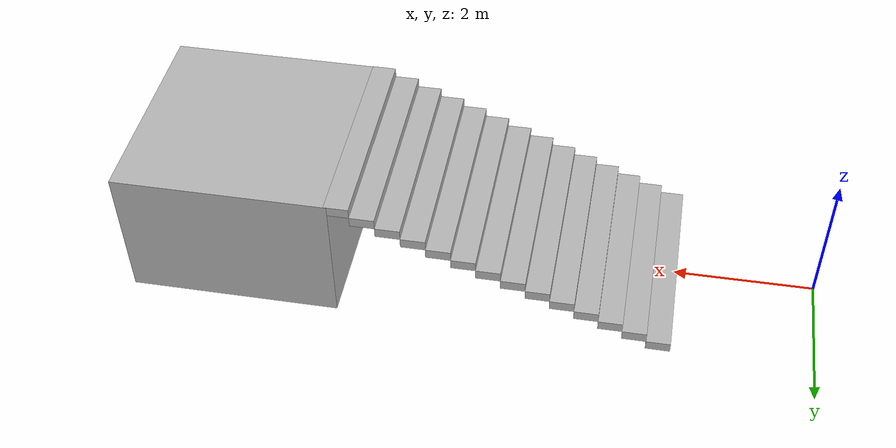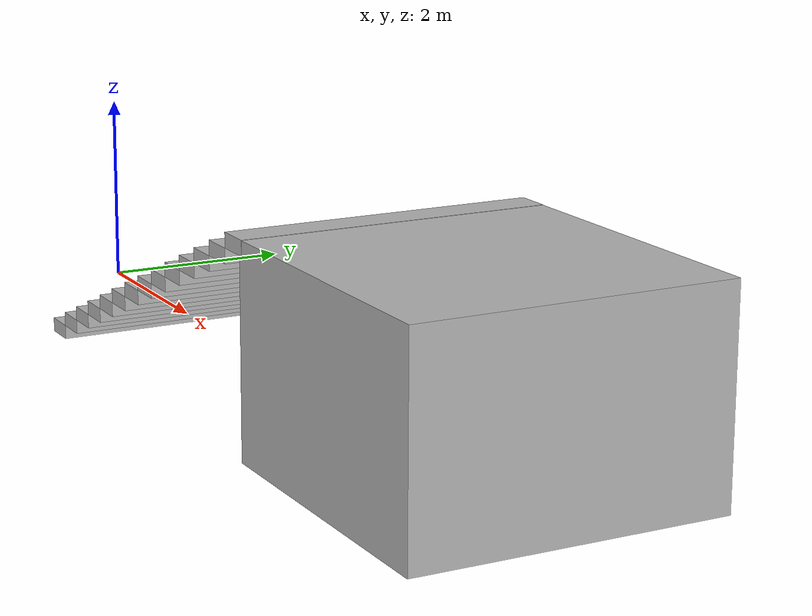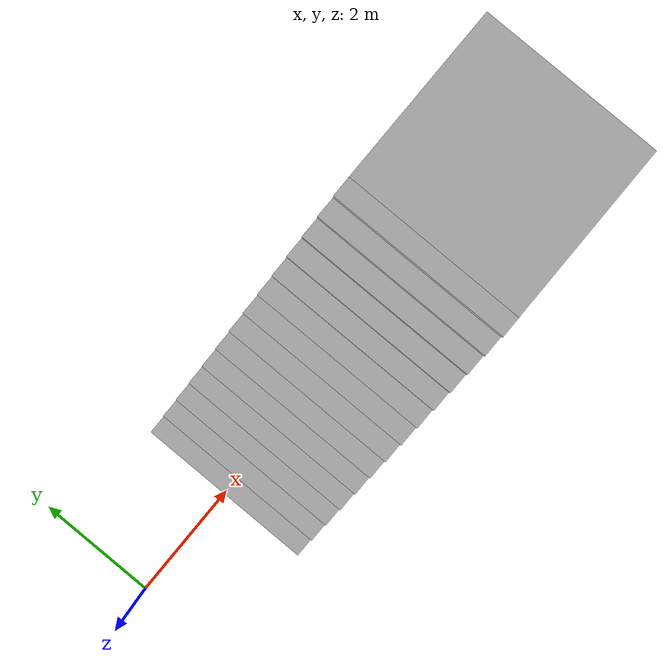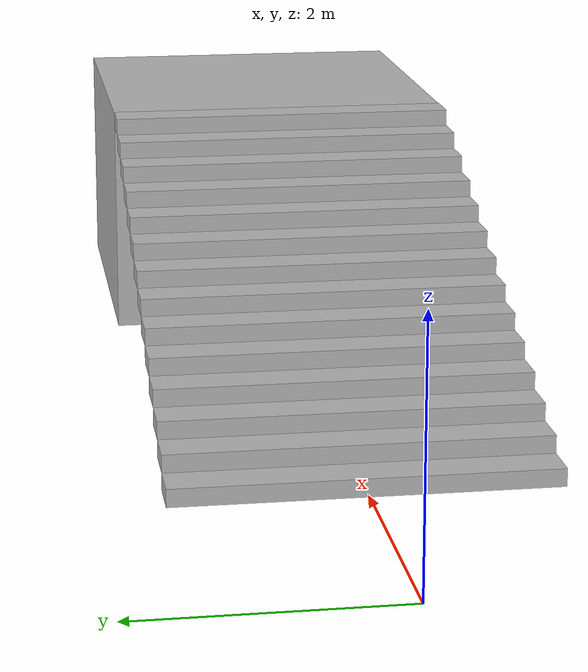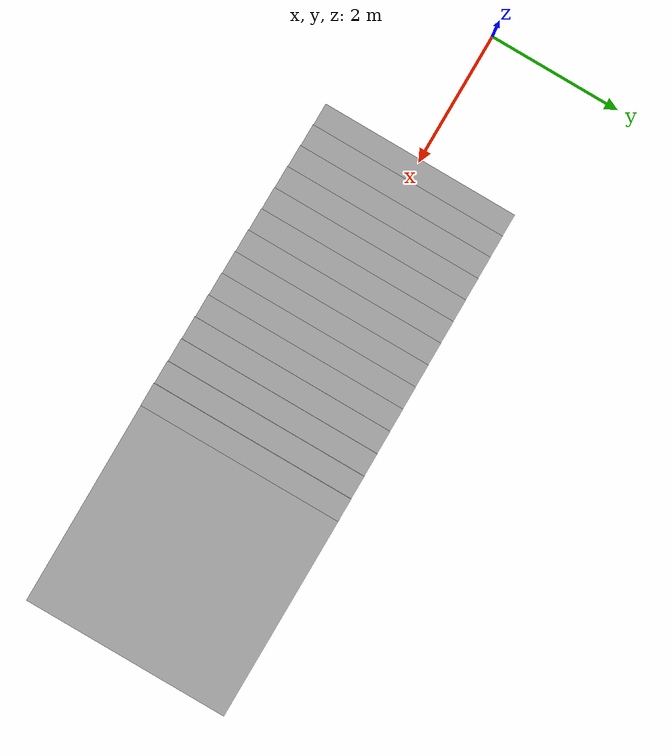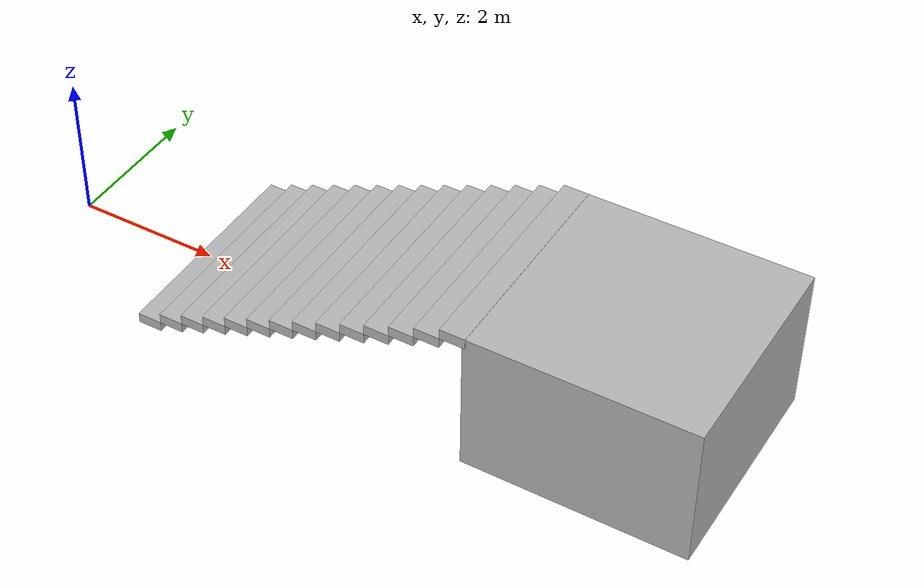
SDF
<sdf version="1.7">
 <world name="example">
  <physics name="4ms" type="dart">
   <max_step_size>0.004</max_step_size>
   <real_time_factor>10</real_time_factor>
   <real_time_update_rate>1000</real_time_update_rate>
  </physics>
  <scene><ambient>0.2 0.2 0.2 1</ambient><background>0.8 0.8 0.8 1</background><shadows>1</shadows></scene>
  <light name="sun" type="directional">
   <pose>0 0 10 0 -0 0</pose>
   <diffuse>0.8 0.8 0.8 1</diffuse>
   <specular>0.8 0.8 0.8 1</specular>
   <attenuation>
    <range>1</range>
    <constant>0.9</constant>
    <linear>1</linear>
    <quadratic>0.001</quadratic>
   </attenuation>
   <direction>0 0 -1</direction>
   <spot><inner_angle>0</inner_angle><outer_angle>0</outer_angle><falloff>0</falloff></spot>
  </light>
  <light name="light1" type="point">
   <pose>0 0 4 0 -0 0</pose>
   <attenuation>
    <range>1000</range>
    <linear>0</linear>
    <constant>0.1</constant>
    <quadratic>0.005</quadratic>
   </attenuation>
   <diffuse>0.8 0.8 0.8 1</diffuse>
   <specular>0.8 0.8 0.8 1</specular>
   <spot><inner_angle>5</inner_angle><outer_angle>10.1</outer_angle><falloff>0.1</falloff></spot>
   <direction>0 0 -1</direction>
  </light>
  <light name="light2" type="spot">
   <pose>0 0 4 0 -0 0</pose>
   <attenuation>
    <range>1000</range>
    <linear>0.1</linear>
    <constant>0.2</constant>
    <quadratic>0.005</quadratic>
   </attenuation>
   <diffuse>0.8 0.8 0.5 1</diffuse>
   <specular>0.8 0.8 0.5 1</specular>
   <spot><inner_angle>5</inner_angle><outer_angle>10.1</outer_angle><falloff>0.1</falloff></spot>
   <direction>0 0 -1</direction>
  </light>
  <gravity>0 0 -9.8</gravity>
  <magnetic_field>6e-06 2.3e-05 -4.2e-05</magnetic_field>
  <atmosphere type="adiabatic"/>
  <plugin name="__default__" filename="__default__"/>
  <model name="stairs_shallow">
   <pose>4.34275 0 0 0 0 1.57</pose>
   <link name="Stairs_2">
    <visual name="Stairs_2_Visual_0">
     <pose>-0 2.21 0.071429 0 -0 0</pose>
     <geometry><box><size>3 0.34 0.142857</size></box></geometry>
     <meta><layer>0</layer></meta>
    </visual>
    <collision name="Stairs_2_Collision_0">
     <geometry><box><size>3 0.34 0.142857</size></box></geometry>
     <pose>-0 2.21 0.071429 0 -0 0</pose>
    </collision>
    <visual name="Stairs_2_Visual_1">
     <pose>-0 1.87 0.214286 0 -0 0</pose>
     <geometry><box><size>3 0.34 0.142857</size></box></geometry>
     <meta><layer>0</layer></meta>
    </visual>
    <collision name="Stairs_2_Collision_1">
     <geometry><box><size>3 0.34 0.142857</size></box></geometry>
     <pose>-0 1.87 0.214286 0 -0 0</pose>
    </collision>
    <visual name="Stairs_2_Visual_2">
     <pose>-0 1.53 0.357143 0 -0 0</pose>
     <geometry><box><size>3 0.34 0.142857</size></box></geometry>
     <meta><layer>0</layer></meta>
    </visual>
    <collision name="Stairs_2_Collision_2">
     <geometry><box><size>3 0.34 0.142857</size></box></geometry>
     <pose>-0 1.53 0.357143 0 -0 0</pose>
    </collision>
    <visual name="Stairs_2_Visual_3">
     <pose>-0 1.19 0.5 0 -0 0</pose>
     <geometry><box><size>3 0.34 0.142857</size></box></geometry>
     <meta><layer>0</layer></meta>
    </visual>
    <collision name="Stairs_2_Collision_3">
     <geometry><box><size>3 0.34 0.142857</size></box></geometry>
     <pose>-0 1.19 0.5 0 -0 0</pose>
    </collision>
    <visual name="Stairs_2_Visual_4">
     <pose>-0 0.85 0.642857 0 -0 0</pose>
     <geometry><box><size>3 0.34 0.142857</size></box></geometry>
     <meta><layer>0</layer></meta>
    </visual>
    <collision name="Stairs_2_Collision_4">
     <geometry><box><size>3 0.34 0.142857</size></box></geometry>
     <pose>-0 0.85 0.642857 0 -0 0</pose>
    </collision>
    <visual name="Stairs_2_Visual_5">
     <pose>-0 0.51 0.785714 0 -0 0</pose>
     <geometry><box><size>3 0.34 0.142857</size></box></geometry>
     <meta><layer>0</layer></meta>
    </visual>
    <collision name="Stairs_2_Collision_5">
     <geometry><box><size>3 0.34 0.142857</size></box></geometry>
     <pose>-0 0.51 0.785714 0 -0 0</pose>
    </collision>
    <visual name="Stairs_2_Visual_6">
     <pose>-0 0.17 0.928571 0 -0 0</pose>
     <geometry><box><size>3 0.34 0.142857</size></box></geometry>
     <meta><layer>0</layer></meta>
    </visual>
    <collision name="Stairs_2_Collision_6">
     <geometry><box><size>3 0.34 0.142857</size></box></geometry>
     <pose>-0 0.17 0.928571 0 -0 0</pose>
    </collision>
    <visual name="Stairs_2_Visual_7">
     <pose>-0 -0.17 1.07143 0 -0 0</pose>
     <geometry><box><size>3 0.34 0.142857</size></box></geometry>
     <meta><layer>0</layer></meta>
    </visual>
    <collision name="Stairs_2_Collision_7">
     <geometry><box><size>3 0.34 0.142857</size></box></geometry>
     <pose>-0 -0.17 1.07143 0 -0 0</pose>
    </collision>
    <visual name="Stairs_2_Visual_8">
     <pose>-0 -0.51 1.21429 0 -0 0</pose>
     <geometry><box><size>3 0.34 0.142857</size></box></geometry>
     <meta><layer>0</layer></meta>
    </visual>
    <collision name="Stairs_2_Collision_8">
     <geometry><box><size>3 0.34 0.142857</size></box></geometry>
     <pose>-0 -0.51 1.21429 0 -0 0</pose>
    </collision>
    <visual name="Stairs_2_Visual_9">
     <pose>-0 -0.85 1.35714 0 -0 0</pose>
     <geometry><box><size>3 0.34 0.142857</size></box></geometry>
     <meta><layer>0</layer></meta>
    </visual>
    <collision name="Stairs_2_Collision_9">
     <geometry><box><size>3 0.34 0.142857</size></box></geometry>
     <pose>-0 -0.85 1.35714 0 -0 0</pose>
    </collision>
    <visual name="Stairs_2_Visual_10">
     <pose>-0 -1.19 1.5 0 -0 0</pose>
     <geometry><box><size>3 0.34 0.142857</size></box></geometry>
     <meta><layer>0</layer></meta>
    </visual>
    <collision name="Stairs_2_Collision_10">
     <geometry><box><size>3 0.34 0.142857</size></box></geometry>
     <pose>-0 -1.19 1.5 0 -0 0</pose>
    </collision>
    <visual name="Stairs_2_Visual_11">
     <pose>-0 -1.53 1.64286 0 -0 0</pose>
     <geometry><box><size>3 0.34 0.142857</size></box></geometry>
     <meta><layer>0</layer></meta>
    </visual>
    <collision name="Stairs_2_Collision_11">
     <geometry><box><size>3 0.34 0.142857</size></box></geometry>
     <pose>-0 -1.53 1.64286 0 -0 0</pose>
    </collision>
    <visual name="Stairs_2_Visual_12">
     <pose>-0 -1.87 1.78571 0 -0 0</pose>
     <geometry><box><size>3 0.34 0.142857</size></box></geometry>
     <meta><layer>0</layer></meta>
    </visual>
    <collision name="Stairs_2_Collision_12">
     <geometry><box><size>3 0.34 0.142857</size></box></geometry>
     <pose>-0 -1.87 1.78571 0 -0 0</pose>
    </collision>
    <visual name="Stairs_2_Visual_13">
     <pose>-0 -2.21 1.92857 0 -0 0</pose>
     <geometry><box><size>3 0.34 0.142857</size></box></geometry>
     <meta><layer>0</layer></meta>
    </visual>
    <collision name="Stairs_2_Collision_13">
     <geometry><box><size>3 0.34 0.142857</size></box></geometry>
     <pose>-0 -2.21 1.92857 0 -0 0</pose>
    </collision>
   </link>
   <static>1</static>
  </model>
  <model name="plateau">
   <pose>8.18004 0 -0.003849 0 -0 0</pose>
   <link name="Stairs_2">
    <visual name="Stairs_2_Visual_0">
     <pose>0 0 1 0 -0 0</pose>
     <geometry><box><size>3 3 2</size></box></geometry>
     <meta><layer>0</layer></meta>
    </visual>
    <collision name="Stairs_2_Collision_0">
     <geometry><box><size>3 3 2</size></box></geometry>
     <pose>0 0 1 0 -0 0</pose>
    </collision>
   </link>
   <static>1</static>
  </model>
 </world>
</sdf>
